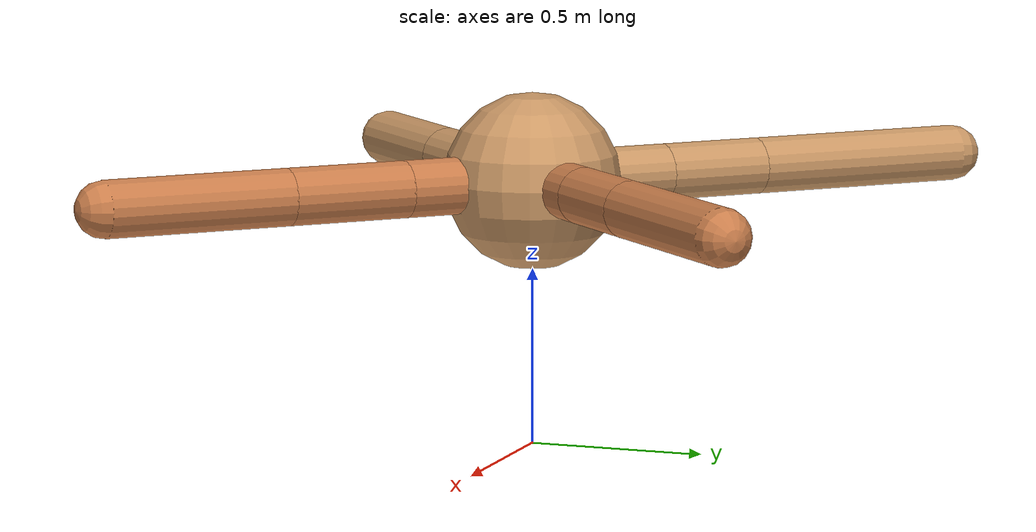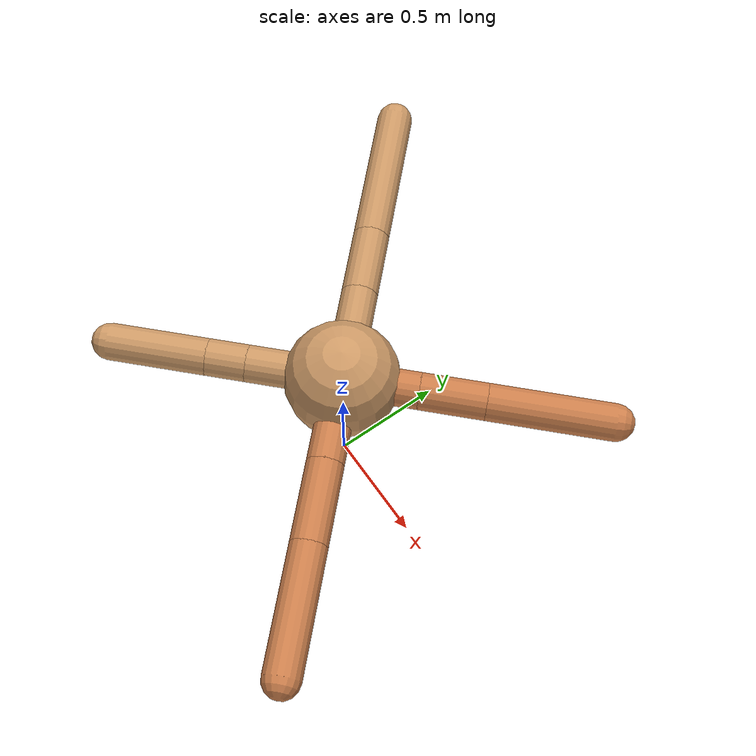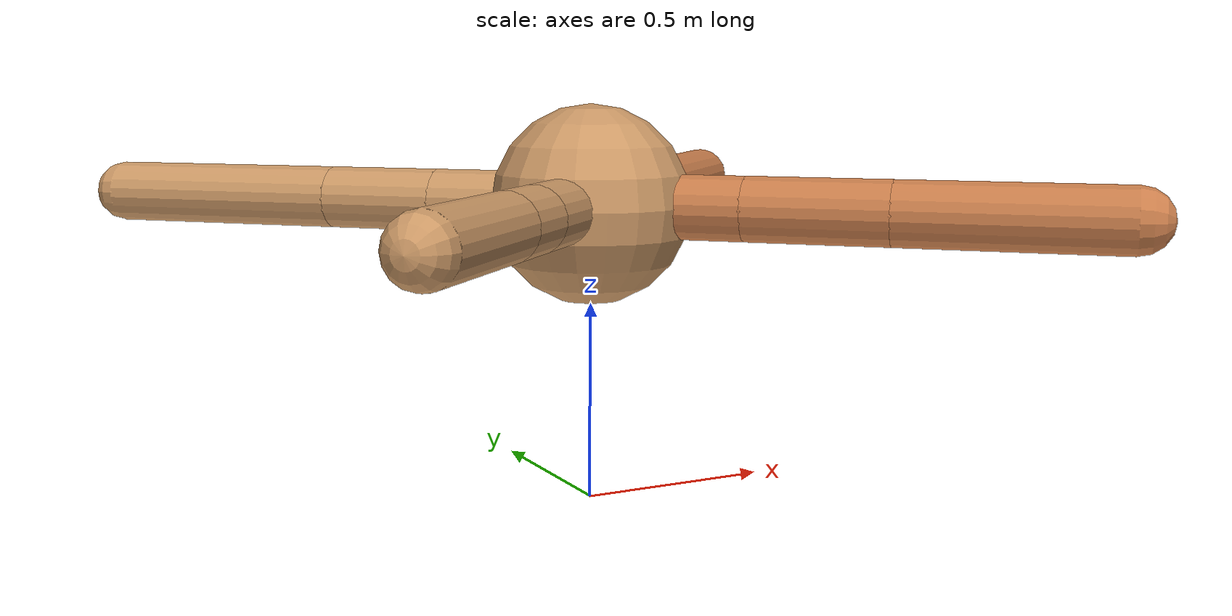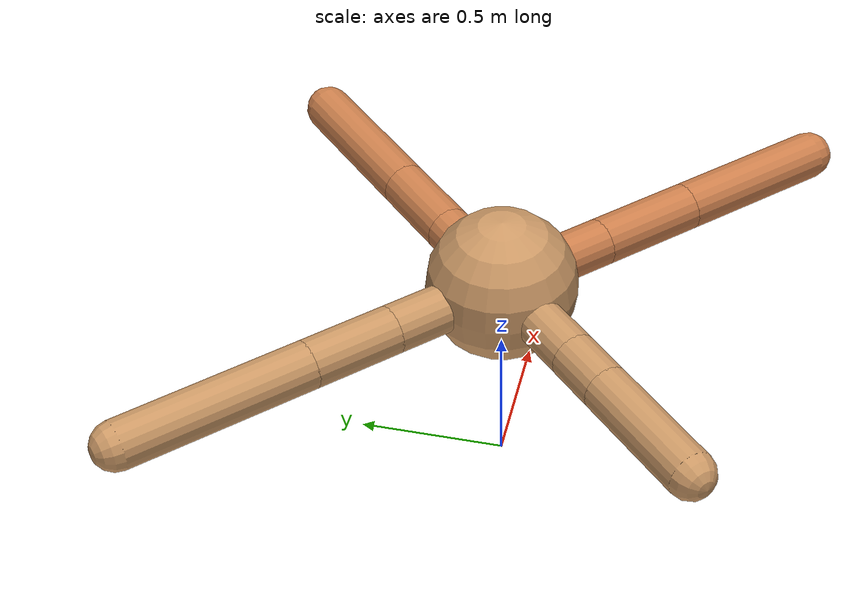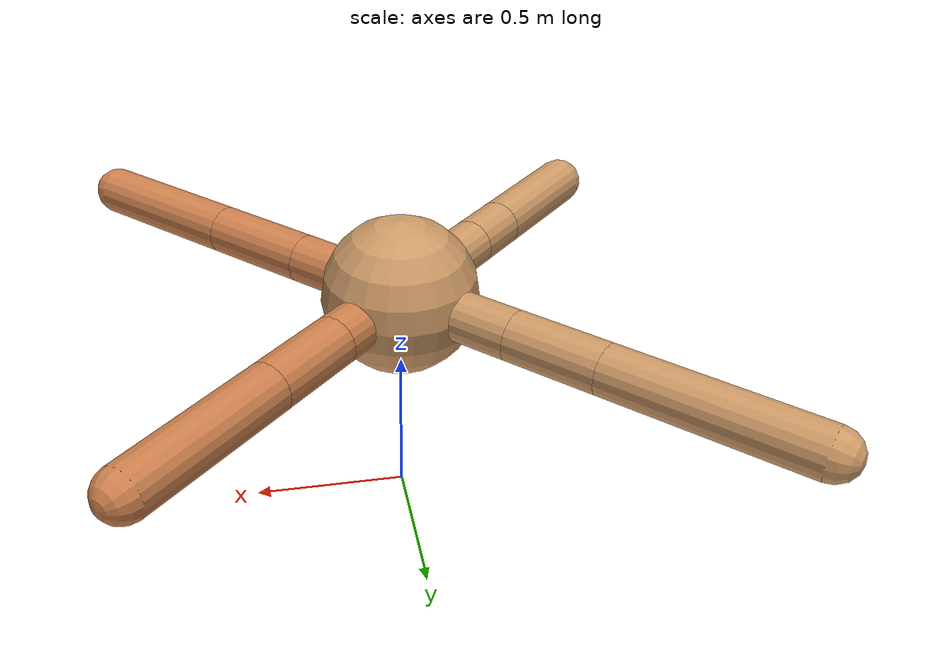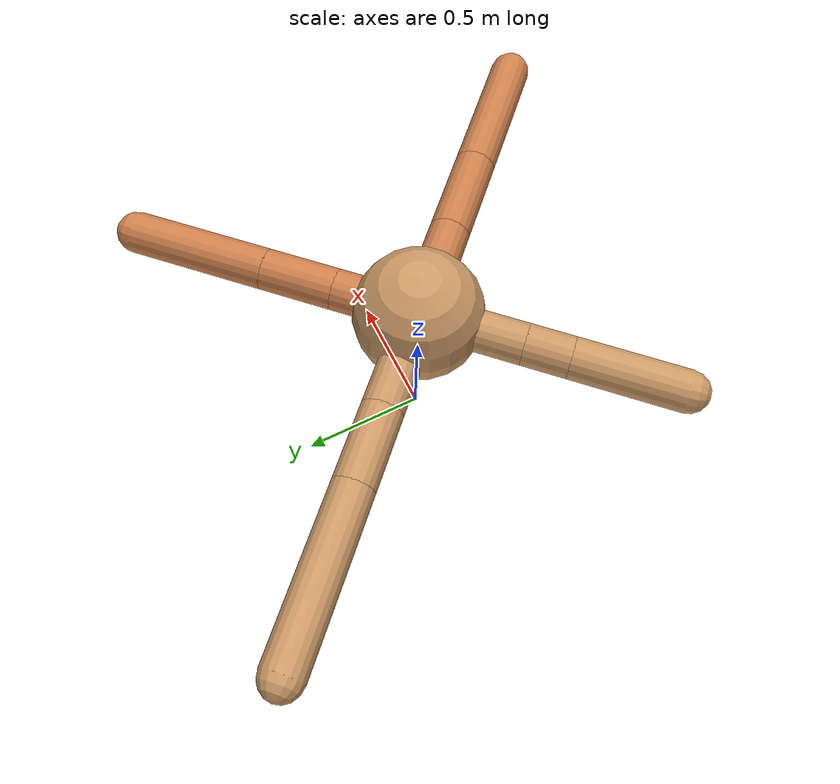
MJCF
<mujoco model="ant">
  <compiler angle="degree" coordinate="local" inertiafromgeom="true" />
  <option integrator="RK4" timestep="0.01" />
  <custom>
    <numeric data="0.0 0.0 0.55 1.0 0.0 0.0 0.0 0.0 1.0 0.0 -1.0 0.0 -1.0 0.0 1.0" name="init_qpos" />
  </custom>
  <default>
    <joint armature="1" damping="1" limited="true" />
    <geom conaffinity="0" condim="3" density="5.0" friction="1.5 0.1 0.1" margin="0.01" rgba="0.8 0.6 0.4 1" />
  </default>
  <worldbody>
    <body name="torso" pos="0 0 0.75">
      <geom name="torso_geom" pos="0 0 0" size="0.25" type="sphere" />

      <body name="front_left_leg" pos="0 0 0">
        <geom fromto="0.0 0.0 0.0 0.23252704827535312 0.23252704827535312 0.0" name="aux_1_geom" size="0.08" type="capsule" rgba=".8 .5 .3 1" />
        <body name="aux_1" pos="0.23252704827535312 0.23252704827535312 0.0">
          <joint axis="0 0 1" name="hip_1" pos="0.0 0.0 0.0" range="-40 40" type="hinge" />
          <geom fromto="0.0 0.0 0.0 0.20104337240612355 0.20104337240612355 0.0" name="left_leg_geom" size="0.08" type="capsule" rgba=".8 .5 .3 1" />
          <body pos="0.20104337240612355 0.20104337240612355 0.0" name="front_left_foot">
            <joint axis="-1 1 0" name="ankle_1" pos="0.0 0.0 0.0" range="30 100" type="hinge" />
            <geom fromto="0.0 0.0 0.0 0.38045709738998373 0.38045709738998373 0.0" name="left_ankle_geom" size="0.08" type="capsule" rgba=".8 .5 .3 1" />
          </body>
        </body>
      </body>
      <body name="front_right_leg" pos="0 0 0">
        <geom fromto="0.0 0.0 0.0 -0.29209196025334044 0.29209196025334044 0.0" name="aux_2_geom" size="0.08" type="capsule" />
        <body name="aux_2" pos="-0.29209196025334044 0.29209196025334044 0.0">
          <joint axis="0 0 1" name="hip_2" pos="0.0 0.0 0.0" range="-40 40" type="hinge" />
          <geom fromto="0.0 0.0 0.0 -0.21040051414437422 0.21040051414437422 0.0" name="right_leg_geom" size="0.08" type="capsule" />
          <body pos="-0.21040051414437422 0.21040051414437422 0.0" name="front_right_foot">
            <joint axis="1 1 0" name="ankle_2" pos="0.0 0.0 0.0" range="-100 -30" type="hinge" />
            <geom fromto="0.0 0.0 0.0 -0.4556303303924498 0.4556303303924498 0.0" name="right_ankle_geom" size="0.08" type="capsule" />
          </body>
        </body>
      </body>
      <body name="left_back_leg" pos="0 0 0">
        <geom fromto="0.0 0.0 0.0 -0.28832011746146435 -0.28832011746146435 0.0" name="aux_3_geom" size="0.08" type="capsule" />
        <body name="aux_3" pos="-0.28832011746146435 -0.28832011746146435 0.0">
          <joint axis="0 0 1" name="hip_3" pos="0.0 0.0 0.0" range="-40 40" type="hinge" />
          <geom fromto="0.0 0.0 0.0 -0.12207933062976291 -0.12207933062976291 0.0" name="back_leg_geom" size="0.08" type="capsule" />
          <body pos="-0.12207933062976291 -0.12207933062976291 0.0" name="left_back_foot">
            <joint axis="-1 1 0" name="ankle_3" pos="0.0 0.0 0.0" range="-100 -30" type="hinge" />
            <geom fromto="0.0 0.0 0.0 -0.30163071084914217 -0.30163071084914217 0.0" name="third_ankle_geom" size="0.08" type="capsule" />
          </body>
        </body>
      </body>
      <body name="right_back_leg" pos="0 0 0">
        <geom fromto="0.0 0.0 0.0 0.2759256246876462 -0.2759256246876462 0.0" name="aux_4_geom" size="0.08" type="capsule" rgba=".8 .5 .3 1" />
        <body name="aux_4" pos="0.2759256246876462 -0.2759256246876462 0.0">
          <joint axis="0 0 1" name="hip_4" pos="0.0 0.0 0.0" range="-40 40" type="hinge" />
          <geom fromto="0.0 0.0 0.0 0.24760207491778516 -0.24760207491778516 0.0" name="rightback_leg_geom" size="0.08" type="capsule" rgba=".8 .5 .3 1" />
          <body pos="0.24760207491778516 -0.24760207491778516 0.0" name="right_back_foot">
            <joint axis="1 1 0" name="ankle_4" pos="0.0 0.0 0.0" range="30 100" type="hinge" />
            <geom fromto="0.0 0.0 0.0 0.37930283566764594 -0.37930283566764594 0.0" name="fourth_ankle_geom" size="0.08" type="capsule" rgba=".8 .5 .3 1" />
          </body>
        </body>
      </body>
    </body>
  </worldbody>
  <actuator>
    <motor ctrllimited="true" ctrlrange="-1.0 1.0" joint="hip_4" gear="150" />
    <motor ctrllimited="true" ctrlrange="-1.0 1.0" joint="ankle_4" gear="150" />
    <motor ctrllimited="true" ctrlrange="-1.0 1.0" joint="hip_1" gear="150" />
    <motor ctrllimited="true" ctrlrange="-1.0 1.0" joint="ankle_1" gear="150" />
    <motor ctrllimited="true" ctrlrange="-1.0 1.0" joint="hip_2" gear="150" />
    <motor ctrllimited="true" ctrlrange="-1.0 1.0" joint="ankle_2" gear="150" />
    <motor ctrllimited="true" ctrlrange="-1.0 1.0" joint="hip_3" gear="150" />
    <motor ctrllimited="true" ctrlrange="-1.0 1.0" joint="ankle_3" gear="150" />
  </actuator>
</mujoco>
